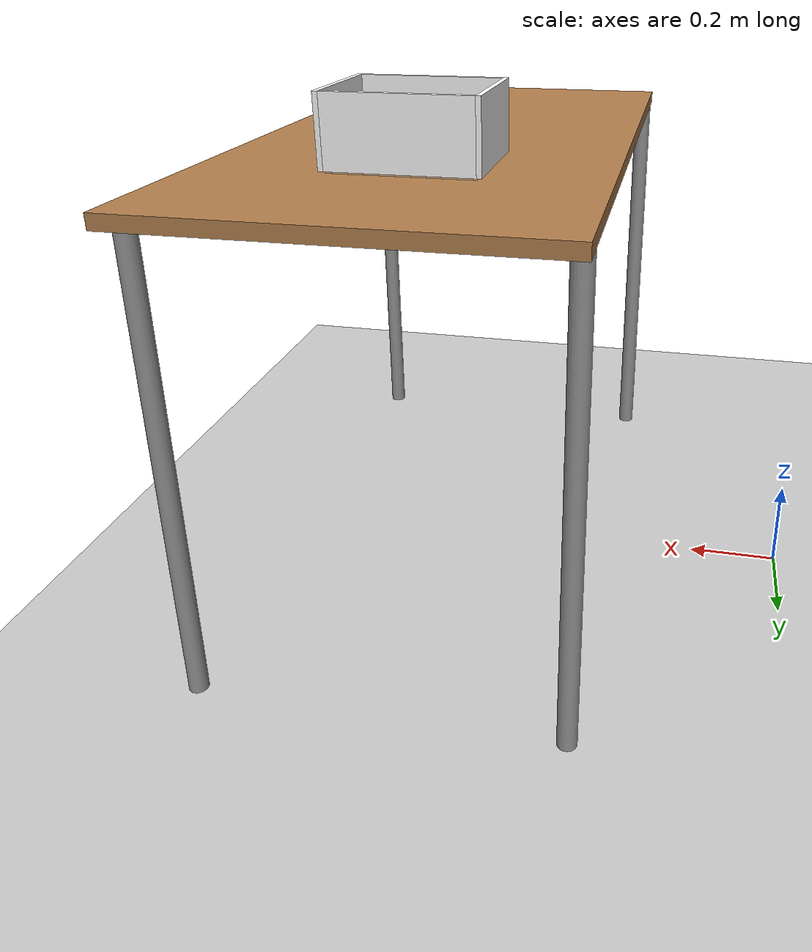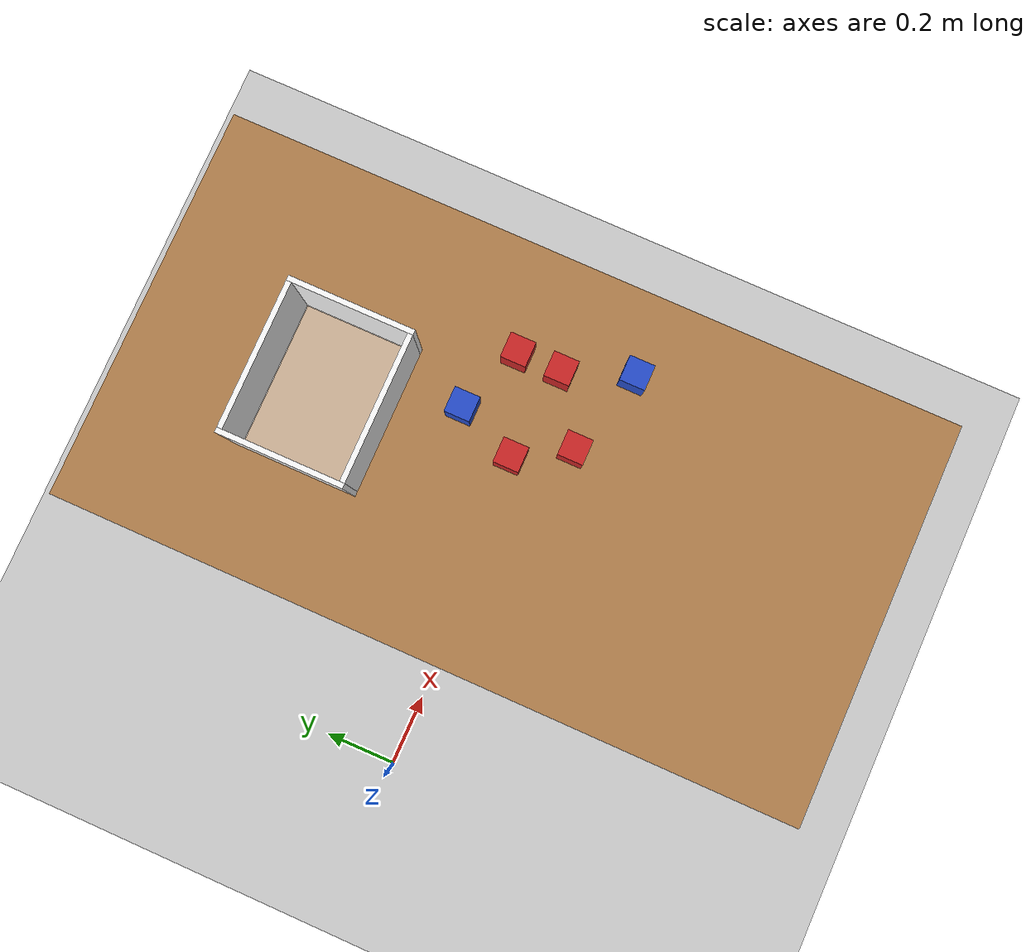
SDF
<sdf version="1.7">
 <world name="default">
  <model name="ground_plane">
   <static>1</static>
   <link name="link">
    <collision name="collision">
     <geometry><plane><normal>0 0 1</normal><size>100 100</size></plane></geometry>
     <surface><friction><ode><mu>100</mu><mu2>50</mu2></ode></friction></surface>
    </collision>
    <visual name="visual">
     <cast_shadows>0</cast_shadows>
     <geometry><plane><normal>0 0 1</normal><size>100 100</size></plane></geometry>
     <material>
      <script><uri>file://media/materials/scripts/gazebo.material</uri><name>Gazebo/Grey</name></script>
     </material>
    </visual>
   </link>
  </model>
  <model name="table_0">
   <static>1</static>
   <link name="link">
    <collision name="surface">
     <pose>0 0 1 0 -0 0</pose>
     <geometry><box><size>1.5 0.8 0.03</size></box></geometry>
     <surface><friction><ode><mu>0.6</mu><mu2>0.6</mu2></ode></friction></surface>
    </collision>
    <visual name="visual1">
     <pose>0 0 1 0 -0 0</pose>
     <geometry><box><size>1.5 0.8 0.03</size></box></geometry>
     <material>
      <script><uri>file://media/materials/scripts/gazebo.material</uri><name>Gazebo/Wood</name></script>
     </material>
    </visual>
    <collision name="front_left_leg">
     <pose>0.68 0.38 0.5 0 -0 0</pose>
     <geometry><cylinder><radius>0.02</radius><length>1</length></cylinder></geometry>
    </collision>
    <visual name="front_left_leg">
     <pose>0.68 0.38 0.5 0 -0 0</pose>
     <geometry><cylinder><radius>0.02</radius><length>1</length></cylinder></geometry>
     <material>
      <script><uri>file://media/materials/scripts/gazebo.material</uri><name>Gazebo/Grey</name></script>
     </material>
    </visual>
    <collision name="front_right_leg">
     <pose>0.68 -0.38 0.5 0 -0 0</pose>
     <geometry><cylinder><radius>0.02</radius><length>1</length></cylinder></geometry>
    </collision>
    <visual name="front_right_leg">
     <pose>0.68 -0.38 0.5 0 -0 0</pose>
     <geometry><cylinder><radius>0.02</radius><length>1</length></cylinder></geometry>
     <material>
      <script><uri>file://media/materials/scripts/gazebo.material</uri><name>Gazebo/Grey</name></script>
     </material>
    </visual>
    <collision name="back_right_leg">
     <pose>-0.68 -0.38 0.5 0 -0 0</pose>
     <geometry><cylinder><radius>0.02</radius><length>1</length></cylinder></geometry>
    </collision>
    <visual name="back_right_leg">
     <pose>-0.68 -0.38 0.5 0 -0 0</pose>
     <geometry><cylinder><radius>0.02</radius><length>1</length></cylinder></geometry>
     <material>
      <script><uri>file://media/materials/scripts/gazebo.material</uri><name>Gazebo/Grey</name></script>
     </material>
    </visual>
    <collision name="back_left_leg">
     <pose>-0.68 0.38 0.5 0 -0 0</pose>
     <geometry><cylinder><radius>0.02</radius><length>1</length></cylinder></geometry>
    </collision>
    <visual name="back_left_leg">
     <pose>-0.68 0.38 0.5 0 -0 0</pose>
     <geometry><cylinder><radius>0.02</radius><length>1</length></cylinder></geometry>
     <material>
      <script><uri>file://media/materials/scripts/gazebo.material</uri><name>Gazebo/Grey</name></script>
     </material>
    </visual>
   </link>
   <pose>0.8 0 0 0 -0 1.5708</pose>
  </model>
  <model name="blue_box_clone_0">
   <link name="link">
    <inertial>
     <mass>1</mass>
     <inertia>
      <ixx>0.166667</ixx>
      <ixy>0</ixy>
      <ixz>0</ixz>
      <iyy>0.166667</iyy>
      <iyz>0</iyz>
      <izz>0.166667</izz>
     </inertia>
    </inertial>
    <visual name="visual">
     <geometry><box><size>0.05 0.05 0.05</size></box></geometry>
     <material>
      <script><name>Gazebo/Blue</name><uri>file://media/materials/scripts/gazebo.material</uri></script>
      <shader type="pixel"><normal_map>__default__</normal_map></shader>
      <ambient>0 0 1 1</ambient>
      <diffuse>0 0 1 1</diffuse>
      <specular>0.1 0.1 0.1 1</specular>
      <emissive>0 0 0 1</emissive>
     </material>
    </visual>
    <collision name="collision">
     <geometry><box><size>0.05 0.05 0.05</size></box></geometry>
     <surface>
      <friction>
       <ode><mu>1</mu><mu2>1</mu2><fdir1>0 0 0</fdir1><slip1>0</slip1><slip2>0</slip2></ode>
       <torsional>
        <coefficient>1</coefficient>
        <patch_radius>0</patch_radius>
        <surface_radius>0</surface_radius>
        <use_patch_radius>1</use_patch_radius>
        <ode><slip>0</slip></ode>
       </torsional>
      </friction>
      <bounce><restitution_coefficient>0</restitution_coefficient><threshold>1e+06</threshold></bounce>
      <contact>
       <collide_without_contact>0</collide_without_contact>
       <collide_without_contact_bitmask>1</collide_without_contact_bitmask>
       <collide_bitmask>1</collide_bitmask>
       <ode>
        <soft_cfm>0</soft_cfm>
        <soft_erp>0.2</soft_erp>
        <kp>1e+13</kp>
        <kd>1</kd>
        <max_vel>0.01</max_vel>
        <min_depth>0</min_depth>
       </ode>
       <bullet>
        <split_impulse>1</split_impulse>
        <split_impulse_penetration_threshold>-0.01</split_impulse_penetration_threshold>
        <soft_cfm>0</soft_cfm>
        <soft_erp>0.2</soft_erp>
        <kp>1e+13</kp>
        <kd>1</kd>
       </bullet>
      </contact>
     </surface>
    </collision>
   </link>
   <static>0</static>
   <pose>0.854662 0.113523 1.04 3e-06 2e-06 0.000107</pose>
  </model>
  <model name="red_box_clone_0">
   <link name="link">
    <inertial>
     <mass>1</mass>
     <inertia>
      <ixx>0.166667</ixx>
      <ixy>0</ixy>
      <ixz>0</ixz>
      <iyy>0.166667</iyy>
      <iyz>0</iyz>
      <izz>0.166667</izz>
     </inertia>
    </inertial>
    <visual name="visual">
     <geometry><box><size>0.05 0.05 0.05</size></box></geometry>
     <material>
      <script><name>Gazebo/Red</name><uri>file://media/materials/scripts/gazebo.material</uri></script>
      <shader type="pixel"><normal_map>__default__</normal_map></shader>
      <ambient>1 0 0 1</ambient>
      <diffuse>1 0 0 1</diffuse>
      <specular>0.1 0.1 0.1 1</specular>
      <emissive>0 0 0 1</emissive>
     </material>
    </visual>
    <collision name="collision">
     <geometry><box><size>0.05 0.05 0.05</size></box></geometry>
     <surface>
      <friction>
       <ode><mu>1</mu><mu2>1</mu2><fdir1>0 0 0</fdir1><slip1>0</slip1><slip2>0</slip2></ode>
       <torsional>
        <coefficient>1</coefficient>
        <patch_radius>0</patch_radius>
        <surface_radius>0</surface_radius>
        <use_patch_radius>1</use_patch_radius>
        <ode><slip>0</slip></ode>
       </torsional>
      </friction>
      <bounce><restitution_coefficient>0</restitution_coefficient><threshold>1e+06</threshold></bounce>
      <contact>
       <collide_without_contact>0</collide_without_contact>
       <collide_without_contact_bitmask>1</collide_without_contact_bitmask>
       <collide_bitmask>1</collide_bitmask>
       <ode>
        <soft_cfm>0</soft_cfm>
        <soft_erp>0.2</soft_erp>
        <kp>1e+13</kp>
        <kd>1</kd>
        <max_vel>0.01</max_vel>
        <min_depth>0</min_depth>
       </ode>
       <bullet>
        <split_impulse>1</split_impulse>
        <split_impulse_penetration_threshold>-0.01</split_impulse_penetration_threshold>
        <soft_cfm>0</soft_cfm>
        <soft_erp>0.2</soft_erp>
        <kp>1e+13</kp>
        <kd>1</kd>
       </bullet>
      </contact>
     </surface>
    </collision>
   </link>
   <static>0</static>
   <pose>0.805788 -0.005093 1.03999 -2e-06 -6e-06 0.0001</pose>
  </model>
  <model name="red_box_clone_clone_0">
   <link name="link">
    <inertial>
     <mass>1</mass>
     <inertia>
      <ixx>0.166667</ixx>
      <ixy>0</ixy>
      <ixz>0</ixz>
      <iyy>0.166667</iyy>
      <iyz>0</iyz>
      <izz>0.166667</izz>
     </inertia>
    </inertial>
    <visual name="visual">
     <geometry><box><size>0.05 0.05 0.05</size></box></geometry>
     <material>
      <script><name>Gazebo/Red</name><uri>file://media/materials/scripts/gazebo.material</uri></script>
      <shader type="pixel"><normal_map>__default__</normal_map></shader>
      <ambient>1 0 0 1</ambient>
      <diffuse>1 0 0 1</diffuse>
      <specular>0.1 0.1 0.1 1</specular>
      <emissive>0 0 0 1</emissive>
     </material>
    </visual>
    <collision name="collision">
     <geometry><box><size>0.05 0.05 0.05</size></box></geometry>
     <surface>
      <friction>
       <ode><mu>1</mu><mu2>1</mu2><fdir1>0 0 0</fdir1><slip1>0</slip1><slip2>0</slip2></ode>
       <torsional>
        <coefficient>1</coefficient>
        <patch_radius>0</patch_radius>
        <surface_radius>0</surface_radius>
        <use_patch_radius>1</use_patch_radius>
        <ode><slip>0</slip></ode>
       </torsional>
      </friction>
      <bounce><restitution_coefficient>0</restitution_coefficient><threshold>1e+06</threshold></bounce>
      <contact>
       <collide_without_contact>0</collide_without_contact>
       <collide_without_contact_bitmask>1</collide_without_contact_bitmask>
       <collide_bitmask>1</collide_bitmask>
       <ode>
        <soft_cfm>0</soft_cfm>
        <soft_erp>0.2</soft_erp>
        <kp>1e+13</kp>
        <kd>1</kd>
        <max_vel>0.01</max_vel>
        <min_depth>0</min_depth>
       </ode>
       <bullet>
        <split_impulse>1</split_impulse>
        <split_impulse_penetration_threshold>-0.01</split_impulse_penetration_threshold>
        <soft_cfm>0</soft_cfm>
        <soft_erp>0.2</soft_erp>
        <kp>1e+13</kp>
        <kd>1</kd>
       </bullet>
      </contact>
     </surface>
    </collision>
   </link>
   <static>0</static>
   <pose>0.864956 -0.106546 1.04 6e-06 -4e-06 5.9e-05</pose>
  </model>
  <model name="red_box_clone_clone_2">
   <link name="link">
    <inertial>
     <mass>1</mass>
     <inertia>
      <ixx>0.166667</ixx>
      <ixy>0</ixy>
      <ixz>0</ixz>
      <iyy>0.166667</iyy>
      <iyz>0</iyz>
      <izz>0.166667</izz>
     </inertia>
    </inertial>
    <visual name="visual">
     <geometry><box><size>0.05 0.05 0.05</size></box></geometry>
     <material>
      <script><name>Gazebo/Red</name><uri>file://media/materials/scripts/gazebo.material</uri></script>
      <shader type="pixel"><normal_map>__default__</normal_map></shader>
      <ambient>1 0 0 1</ambient>
      <diffuse>1 0 0 1</diffuse>
      <specular>0.1 0.1 0.1 1</specular>
      <emissive>0 0 0 1</emissive>
     </material>
    </visual>
    <collision name="collision">
     <geometry><box><size>0.05 0.05 0.05</size></box></geometry>
     <surface>
      <friction>
       <ode><mu>1</mu><mu2>1</mu2><fdir1>0 0 0</fdir1><slip1>0</slip1><slip2>0</slip2></ode>
       <torsional>
        <coefficient>1</coefficient>
        <patch_radius>0</patch_radius>
        <surface_radius>0</surface_radius>
        <use_patch_radius>1</use_patch_radius>
        <ode><slip>0</slip></ode>
       </torsional>
      </friction>
      <bounce><restitution_coefficient>0</restitution_coefficient><threshold>1e+06</threshold></bounce>
      <contact>
       <collide_without_contact>0</collide_without_contact>
       <collide_without_contact_bitmask>1</collide_without_contact_bitmask>
       <collide_bitmask>1</collide_bitmask>
       <ode>
        <soft_cfm>0</soft_cfm>
        <soft_erp>0.2</soft_erp>
        <kp>1e+13</kp>
        <kd>1</kd>
        <max_vel>0.01</max_vel>
        <min_depth>0</min_depth>
       </ode>
       <bullet>
        <split_impulse>1</split_impulse>
        <split_impulse_penetration_threshold>-0.01</split_impulse_penetration_threshold>
        <soft_cfm>0</soft_cfm>
        <soft_erp>0.2</soft_erp>
        <kp>1e+13</kp>
        <kd>1</kd>
       </bullet>
      </contact>
     </surface>
    </collision>
   </link>
   <static>0</static>
   <pose>0.987867 -0.025563 1.04 -4e-06 -7e-06 0.000111</pose>
  </model>
  <model name="blue_box_clone_4">
   <link name="link">
    <inertial>
     <mass>1</mass>
     <inertia>
      <ixx>0.166667</ixx>
      <ixy>0</ixy>
      <ixz>0</ixz>
      <iyy>0.166667</iyy>
      <iyz>0</iyz>
      <izz>0.166667</izz>
     </inertia>
    </inertial>
    <visual name="visual">
     <geometry><box><size>0.05 0.05 0.05</size></box></geometry>
     <material>
      <script><name>Gazebo/Blue</name><uri>file://media/materials/scripts/gazebo.material</uri></script>
      <shader type="pixel"><normal_map>__default__</normal_map></shader>
      <ambient>0 0 1 1</ambient>
      <diffuse>0 0 1 1</diffuse>
      <specular>0.1 0.1 0.1 1</specular>
      <emissive>0 0 0 1</emissive>
     </material>
    </visual>
    <collision name="collision">
     <geometry><box><size>0.05 0.05 0.05</size></box></geometry>
     <surface>
      <friction>
       <ode><mu>1</mu><mu2>1</mu2><fdir1>0 0 0</fdir1><slip1>0</slip1><slip2>0</slip2></ode>
       <torsional>
        <coefficient>1</coefficient>
        <patch_radius>0</patch_radius>
        <surface_radius>0</surface_radius>
        <use_patch_radius>1</use_patch_radius>
        <ode><slip>0</slip></ode>
       </torsional>
      </friction>
      <bounce><restitution_coefficient>0</restitution_coefficient><threshold>1e+06</threshold></bounce>
      <contact>
       <collide_without_contact>0</collide_without_contact>
       <collide_without_contact_bitmask>1</collide_without_contact_bitmask>
       <collide_bitmask>1</collide_bitmask>
       <ode>
        <soft_cfm>0</soft_cfm>
        <soft_erp>0.2</soft_erp>
        <kp>1e+13</kp>
        <kd>1</kd>
        <max_vel>0.01</max_vel>
        <min_depth>0</min_depth>
       </ode>
       <bullet>
        <split_impulse>1</split_impulse>
        <split_impulse_penetration_threshold>-0.01</split_impulse_penetration_threshold>
        <soft_cfm>0</soft_cfm>
        <soft_erp>0.2</soft_erp>
        <kp>1e+13</kp>
        <kd>1</kd>
       </bullet>
      </contact>
     </surface>
    </collision>
   </link>
   <static>0</static>
   <pose>1.03627 -0.155287 1.04 -8.5e-05 -9e-05 0.000146</pose>
  </model>
  <model name="red_box_clone_clone_1_clone_0">
   <link name="link">
    <inertial>
     <mass>1</mass>
     <inertia>
      <ixx>0.166667</ixx>
      <ixy>0</ixy>
      <ixz>0</ixz>
      <iyy>0.166667</iyy>
      <iyz>0</iyz>
      <izz>0.166667</izz>
     </inertia>
    </inertial>
    <visual name="visual">
     <geometry><box><size>0.05 0.05 0.05</size></box></geometry>
     <material>
      <script><name>Gazebo/Red</name><uri>file://media/materials/scripts/gazebo.material</uri></script>
      <shader type="pixel"><normal_map>__default__</normal_map></shader>
      <ambient>1 0 0 1</ambient>
      <diffuse>1 0 0 1</diffuse>
      <specular>0.1 0.1 0.1 1</specular>
      <emissive>0 0 0 1</emissive>
     </material>
    </visual>
    <collision name="collision">
     <geometry><box><size>0.05 0.05 0.05</size></box></geometry>
     <surface>
      <friction>
       <ode><mu>1</mu><mu2>1</mu2><fdir1>0 0 0</fdir1><slip1>0</slip1><slip2>0</slip2></ode>
       <torsional>
        <coefficient>1</coefficient>
        <patch_radius>0</patch_radius>
        <surface_radius>0</surface_radius>
        <use_patch_radius>1</use_patch_radius>
        <ode><slip>0</slip></ode>
       </torsional>
      </friction>
      <bounce><restitution_coefficient>0</restitution_coefficient><threshold>1e+06</threshold></bounce>
      <contact>
       <collide_without_contact>0</collide_without_contact>
       <collide_without_contact_bitmask>1</collide_without_contact_bitmask>
       <collide_bitmask>1</collide_bitmask>
       <ode>
        <soft_cfm>0</soft_cfm>
        <soft_erp>0.2</soft_erp>
        <kp>1e+13</kp>
        <kd>1</kd>
        <max_vel>0.01</max_vel>
        <min_depth>0</min_depth>
       </ode>
       <bullet>
        <split_impulse>1</split_impulse>
        <split_impulse_penetration_threshold>-0.01</split_impulse_penetration_threshold>
        <soft_cfm>0</soft_cfm>
        <soft_erp>0.2</soft_erp>
        <kp>1e+13</kp>
        <kd>1</kd>
       </bullet>
      </contact>
     </surface>
    </collision>
   </link>
   <static>0</static>
   <pose>0.988084 0.060889 1.04 -3e-06 -7e-06 7.3e-05</pose>
  </model>
  <model name="blue_sorting_bin">
   <static>1</static>
   <pose>0.773453 0.346837 1.03 0 -0 0</pose>
   <link name="link">
    <visual name="base_visual">
     <geometry><box><size>0.28 0.22 0.01</size></box></geometry>
     <material><ambient>1 1 1 0.45</ambient><diffuse>1 1 1 0.45</diffuse></material>
    </visual>
    <collision name="base_collision"><geometry><box><size>0.28 0.22 0.01</size></box></geometry></collision>
    <visual name="front_wall_visual">
     <pose>0.145 0 0.07 0 -0 0</pose>
     <geometry><box><size>0.01 0.24 0.14</size></box></geometry>
     <material><ambient>1 1 1 1</ambient><diffuse>1 1 1 1</diffuse></material>
    </visual>
    <collision name="front_wall_collision">
     <pose>0.145 0 0.07 0 -0 0</pose>
     <geometry><box><size>0.01 0.24 0.14</size></box></geometry>
    </collision>
    <visual name="back_wall_visual">
     <pose>-0.145 0 0.07 0 -0 0</pose>
     <geometry><box><size>0.01 0.24 0.14</size></box></geometry>
     <material><ambient>1 1 1 1</ambient><diffuse>1 1 1 1</diffuse></material>
    </visual>
    <collision name="back_wall_collision">
     <pose>-0.145 0 0.07 0 -0 0</pose>
     <geometry><box><size>0.01 0.24 0.14</size></box></geometry>
    </collision>
    <visual name="left_wall_visual">
     <pose>0 0.115 0.07 0 -0 0</pose>
     <geometry><box><size>0.28 0.01 0.14</size></box></geometry>
     <material><ambient>1 1 1 1</ambient><diffuse>1 1 1 1</diffuse></material>
    </visual>
    <collision name="left_wall_collision">
     <pose>0 0.115 0.07 0 -0 0</pose>
     <geometry><box><size>0.28 0.01 0.14</size></box></geometry>
    </collision>
    <visual name="right_wall_visual">
     <pose>0 -0.115 0.07 0 -0 0</pose>
     <geometry><box><size>0.28 0.01 0.14</size></box></geometry>
     <material><ambient>1 1 1 1</ambient><diffuse>1 1 1 1</diffuse></material>
    </visual>
    <collision name="right_wall_collision">
     <pose>0 -0.115 0.07 0 -0 0</pose>
     <geometry><box><size>0.28 0.01 0.14</size></box></geometry>
    </collision>
   </link>
  </model>
 </world>
</sdf>
